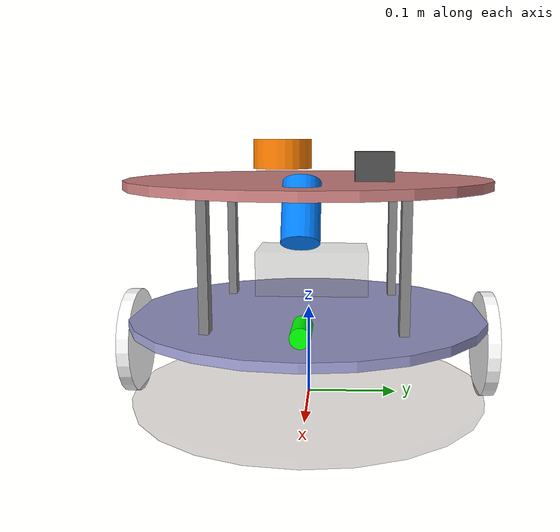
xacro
<?xml version="1.0" encoding="UTF-8"?>

<robot name="robot_description">

	<xacro:include filename="$(find mybotmaster)/mybot_description/urdf/myrobot.gazebo" />
	<xacro:include filename="$(find mybotmaster)/mybot_description/urdf/materials.xacro" />
	<xacro:include filename="$(find mybotmaster)/mybot_description/urdf/macros.xacro" />

<!-- Used for fixing robot to Gazebo 'base_link' -->

 	<link name="base_link"/>

	<link name="chassis">
		<visual>
		<geometry>
		<cylinder length="0.01" radius="0.2"/>
		</geometry>

		<material name="none">
		<color rgba="0.1 0 0 0.1"/>
		</material>
		</visual>

		<inertial>
		<origin xyz="0 0 0.3" rpy="0 0 0"/>
		<mass value="6"/>
		<inertia
			ixx="1.0" ixy="0.0" ixz="0.0"
			iyy="1.0" iyz="0.0"
			izz="1.0"/>
		</inertial>
	</link>
	<joint name="chassis_joint" type="fixed">
		<parent link="base_link"/>
		<child link="chassis"/>
		<origin rpy="0 0 0" xyz="0 0 0"/>
	</joint>

	<link name="bottom_link">
	   <visual>
	    <geometry>
	     <cylinder length="0.01" radius="0.2"/>
	    </geometry>
	    <material name="alluminio">
	      <color rgba="0.6 0.6 0.8 1"/>
	    </material>
	   </visual>
	 </link>
	<joint name="bottom_joint" type="fixed">
		<parent link="base_link"/>
		<child link="bottom_link"/>
		<origin rpy="0 0 0" xyz="0 0 0.09"/>
	</joint>

  <link name="battery_link">
    <visual>
		<geometry>
        	<box size="0.09 0.14 0.06"/>
      	</geometry>
      	<material name="black">
		<color rgba="0.5 0.5 0.5 0.3"/>
      	</material>
    </visual>
  </link>
  <joint name="battery_joint" type="fixed">
    <parent link="bottom_link"/>
    <child link="battery_link"/>
    <origin rpy="0 0 0" xyz="-0.12 0 0.03"/>
  </joint>

	<link name="top_link">
		<visual>
		<geometry>
		<cylinder length="0.01" radius="0.2"/>
		</geometry>

		<material name="plexiglass">
		<color rgba="0.8 0.5 0.5 0.9"/>
		</material>
		</visual>
	</link>
	<joint name="top_joint" type="fixed">
		<parent link="bottom_link"/>
		<child link="top_link"/>
		<origin rpy="0 0 0" xyz="0 0 0.15"/>
	</joint>

<link name="columnFR_link">
   <visual>
    <geometry>
     <box size="0.02 0.01 0.15"/>
    </geometry>
    <material name="alluminium">
      <color rgba="0.5 0.5 0.5 1"/>
    </material>
   </visual>
 </link>
   <joint name="columnFR_joint" type="fixed">
    <parent link="bottom_link"/>
    <child link="columnFR_link"/>
    <origin rpy="0 0 0" xyz="0.1 -0.1 0.075"/>
  </joint>

<link name="columnFL_link">
   <visual>
    <geometry>
     <box size="0.02 0.01 0.15"/>
    </geometry>
    <material name="alluminium">
      <color rgba="0.5 0.5 0.5 1"/>
    </material>
   </visual>
 </link>
  <joint name="columnFL_joint" type="fixed">
    <parent link="bottom_link"/>
    <child link="columnFL_link"/>
    <origin rpy="0 0 0" xyz="0.1 0.1 0.075"/>
  </joint>

<link name="columnBR_link">
   <visual>
    <geometry>
     <box size="0.02 0.01 0.15"/>
    </geometry>

    <material name="alluminium">
      <color rgba="0.5 0.5 0.5 1"/>
    </material>
   </visual>
</link>
  <joint name="columnBR_joint" type="fixed">
    <parent link="bottom_link"/>
    <child link="columnBR_link"/>
    <origin rpy="0 0 0" xyz="-0.1 -0.1 0.075"/>
  </joint>

<link name="columnBL_link">
   <visual>
    <geometry>
     <box size="0.02 0.01 0.15"/>
    </geometry>

    <material name="alluminium">
      <color rgba="0.5 0.5 0.5 1"/>
    </material>
   </visual>
 </link>
  <joint name="columnBL_joint" type="fixed">
    <parent link="bottom_link"/>
    <child link="columnBL_link"/>
    <origin rpy="0 0 0" xyz="-0.1 0.1 0.075"/>
  </joint>

  <link name="right_wheel_link">
    <visual>
      <geometry>
        <cylinder length="0.014" radius="0.059"/>
      </geometry>
      <material name="black">
        <color rgba="1 1 1 1"/>
      </material>
    </visual>
  </link>
 <joint name="right_wheel_joint" type="continuous">
    <axis xyz="0 0 1"/>
    <parent link="base_link"/>
    <child link="right_wheel_link"/>
    <origin rpy="1.5708 0 0" xyz="0 -0.2 0.059"/>
  </joint>

 <link name="left_wheel_link">
    <visual>
      <geometry>
        <cylinder length="0.014" radius="0.059"/>
      </geometry>
      <material name="black">
        <color rgba="1 1 1 1"/>
      </material>
    </visual>
  </link>
  <joint name="left_wheel_joint" type="continuous">
    <axis xyz="0 0 1"/>
    <parent link="base_link"/>
    <child link="left_wheel_link"/>
    <origin rpy="-1.5708 0 0" xyz="0 0.2 0.059"/>
  </joint>

  <link name="caster_wheel_link">
    <visual>
      <geometry>
        <sphere radius="0.03"/>
      </geometry>
      <material name="black">
        <color rgba="0.4 0.4 0.4 0.7"/>
      </material>
    </visual>
  </link>
  <joint name="caster_wheel_joint" type="fixed">
    <parent link="base_link"/>
    <child link="caster_wheel_link"/>
    <origin rpy="0 0 0" xyz="-0.15 0 0.03"/>
  </joint>

  <link name="laser_link">
    <visual>
      <geometry>
        <cylinder length="0.05" radius="0.01"/>
      </geometry>
      <material name="green">
	<color rgba="0 1 0 1"/>
      </material>
    </visual>
  </link>
  <joint name="laser_joint" type="fixed">
    <parent link="bottom_link"/>
    <child link="laser_link"/>
    <origin rpy="0 1.5707 0" xyz="0.15 0 0.02"/>
  </joint>

  <link name="raspicam_link">
    <visual>
	<geometry>
        	<box size="0.03 0.04 0.04"/>
      	</geometry>
      	<material name="plastic_black">
		<color rgba="0.3 0.3 0.3 1"/>
      	</material>
    </visual>
  </link>
  <joint name="raspicam_joint" type="fixed">
    <parent link="top_link"/>
    <child link="raspicam_link"/>
    <origin rpy="0 0 0" xyz="0.05 0.07 0.015"/>
  </joint>

  <link name="scan_link">
    <visual>
      <geometry>
        <cylinder length="0.035" radius="0.035"/>
      </geometry>
      <material name="orange">
		<color rgba="1 0.5 0.0 1"/>
      </material>
    </visual>
  </link>
  <joint name="scan_joint" type="fixed">
    <parent link="top_link"/>
    <child link="scan_link"/>
    <origin rpy="3.141592 0 -0.1" xyz="-0.08 -0.035 0.03"/>
  </joint>
    <gazebo reference="scan_link">
        <material>Gazebo/Orange</material>
        <turnGravityOff>false</turnGravityOff>
        <sensor type="ray" name="head_hokuyo_sensor">
            <pose>0.1 0 0 0 0 0</pose>
            <visualize>false</visualize>
            <update_rate>4</update_rate>
            <ray>
                <scan>
                    <horizontal>
                        <samples>720</samples>
                        <resolution>1</resolution>
                        <min_angle>-3.14</min_angle>
                        <max_angle>3.14</max_angle>
                    </horizontal>
                </scan>
                <range>
                    <min>0.10</min>
                    <max>4.0</max>
                    <resolution>0.001</resolution>
                </range>
            </ray>
            <plugin name="gazebo_ros_head_hokuyo_controller"
                filename="libgazebo_ros_laser.so">
                <topicName>/scan</topicName>
                <frameName>scan_link</frameName>
            </plugin>
        </sensor>
    </gazebo>

   <link name="imu_link">
    <visual>
      <geometry>
		<box size="0.015 0.03 0.01"/>
      </geometry>
      <material name="blue">
		<color rgba="0 0 1 1"/>
      </material>
    </visual>
  </link>
  <joint name="imu_joint" type="fixed">
    <parent link="top_link"/>
    <child link="imu_link"/>
    <origin rpy="0 0 1.5708" xyz="0.0 0 -0.01"/>
  </joint>

   <link name="usbcam_link">
    <visual>
      <geometry>
        <cylinder length="0.06" radius="0.018"/>
      </geometry>
      <material name="usbcam">
		<color rgba="0 0.5 1.0 1"/>
      </material>
    </visual>
  </link>
  <joint name="usbcam_joint" type="fixed">
    <parent link="top_link"/>
    <child link="usbcam_link"/>
    <origin rpy="3.141592 -0.5 0.0" xyz="0.15 0.0 -0.018"/>
  </joint>

  <gazebo>
    <plugin name="gazebo_ros_control" filename="libgazebo_ros_control.so">
      <robotNamespace>/</robotNamespace>
    </plugin>
  </gazebo>

</robot>
